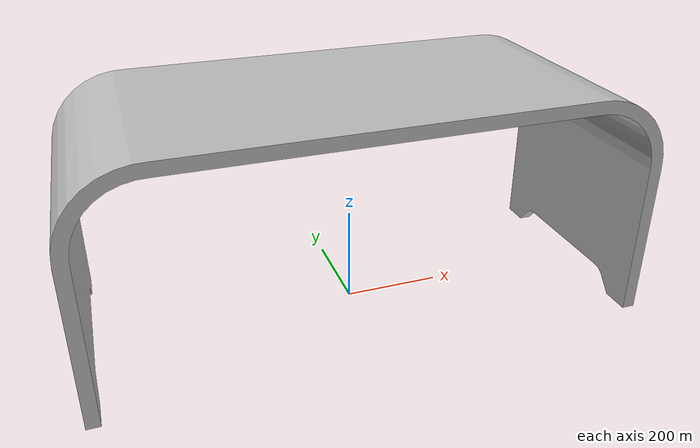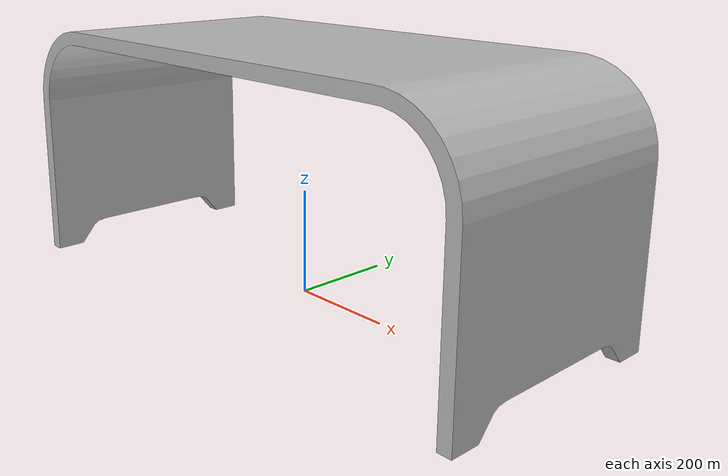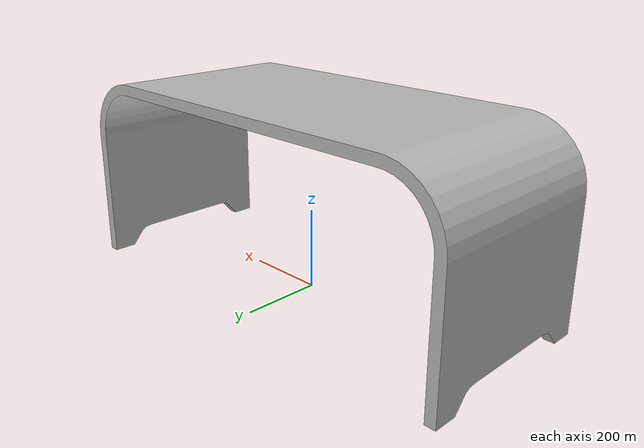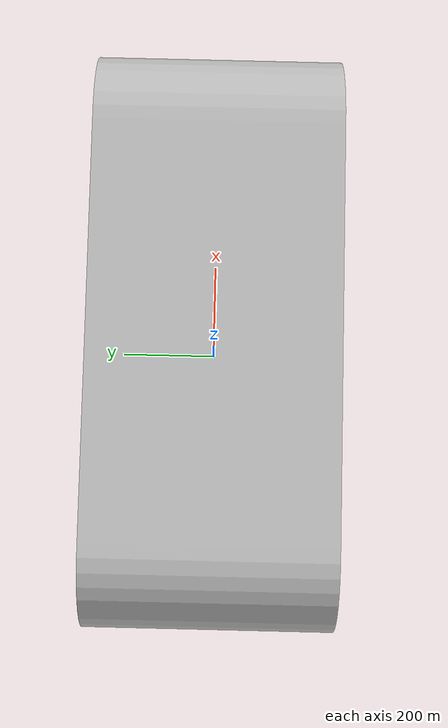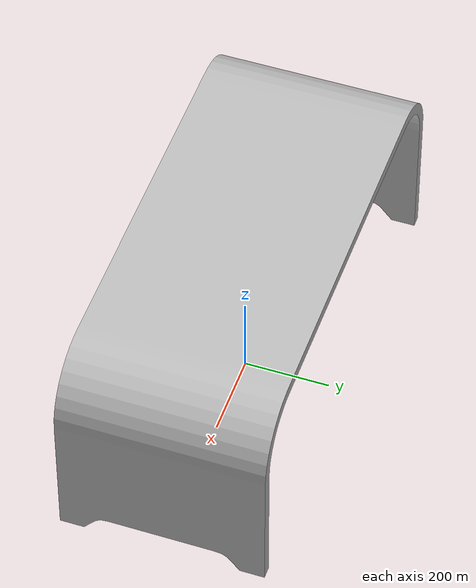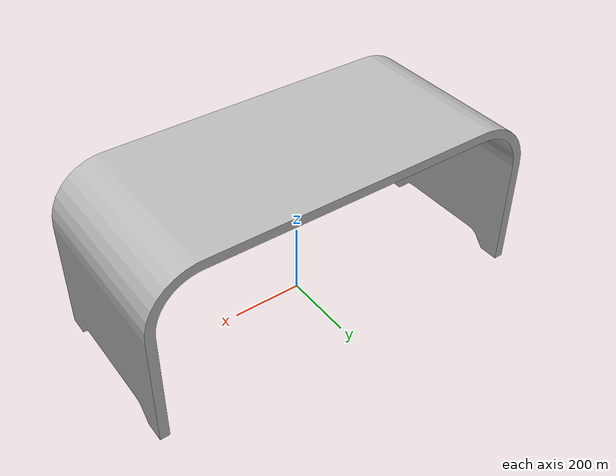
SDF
<?xml version="1.0" ?>
<sdf version="1.5">
    <model name="Desk">
        <link name="link">
            <pose>0 0 0 0 0 0</pose>
            <visual name="visual">
                <geometry>
                    <mesh>
                        <uri>model://desk/meshes/desk.obj</uri>
                        <scale>0.7 0.7 0.7</scale>
                    </mesh>
                </geometry>
            </visual>
            <collision name="collision">
                <geometry>
                    <mesh>
                        <uri>model://desk/meshes/desk.obj</uri>
                        <scale>0.7 0.7 0.7</scale>
                    </mesh>
                </geometry>
            </collision>
        </link>
    </model>
</sdf>
